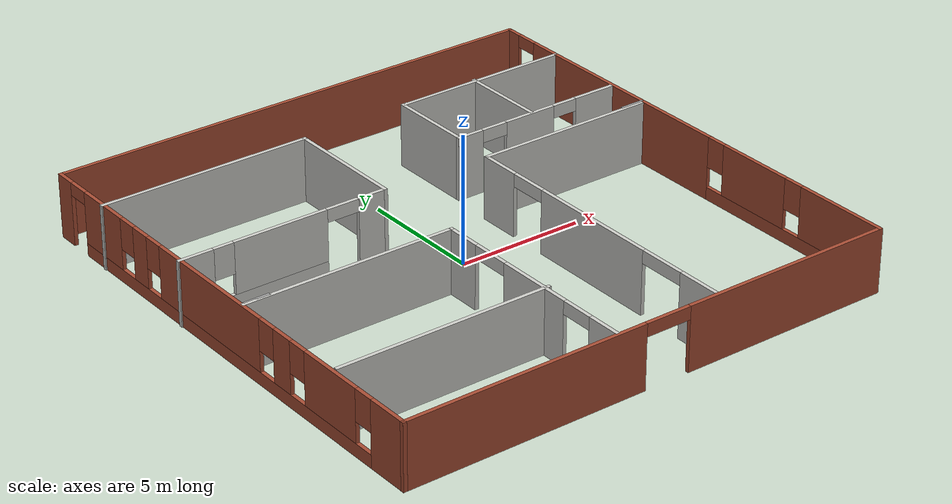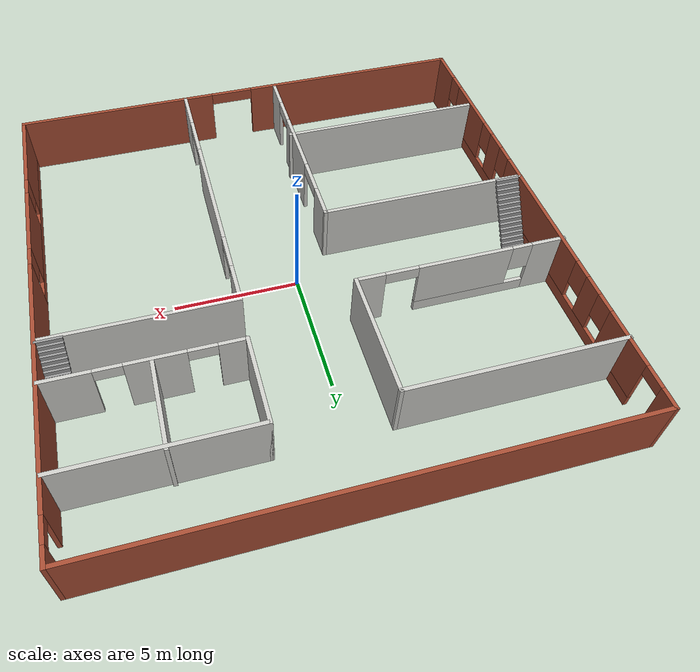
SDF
<?xml version='1.0'?>
<sdf version='1.7'>
  <model name='office'>
    <pose>-0.021351 0.012747 0 0 -0 0</pose>
    <link name='Stairs_0'>
      <visual name='Stairs_0_Visual_0'>
        <pose>-9.3001 0.402751 0.083333 0 -0 0</pose>
        <geometry>
          <box>
            <size>1 0.12 0.166667</size>
          </box>
        </geometry>
        <material>
          <script>
            <uri>file://media/materials/scripts/gazebo.material</uri>
            <name>Gazebo/Grey</name>
          </script>
          <ambient>1 1 1 1</ambient>
        </material>
        <meta>
          <layer>0</layer>
        </meta>
      </visual>
      <collision name='Stairs_0_Collision_0'>
        <geometry>
          <box>
            <size>1 0.12 0.166667</size>
          </box>
        </geometry>
        <pose>-9.3001 0.402751 0.083333 0 -0 0</pose>
      </collision>
      <visual name='Stairs_0_Visual_1'>
        <pose>-9.3001 0.282751 0.25 0 -0 0</pose>
        <geometry>
          <box>
            <size>1 0.12 0.166667</size>
          </box>
        </geometry>
        <material>
          <script>
            <uri>file://media/materials/scripts/gazebo.material</uri>
            <name>Gazebo/Grey</name>
          </script>
          <ambient>1 1 1 1</ambient>
        </material>
        <meta>
          <layer>0</layer>
        </meta>
      </visual>
      <collision name='Stairs_0_Collision_1'>
        <geometry>
          <box>
            <size>1 0.12 0.166667</size>
          </box>
        </geometry>
        <pose>-9.3001 0.282751 0.25 0 -0 0</pose>
      </collision>
      <visual name='Stairs_0_Visual_2'>
        <pose>-9.3001 0.162751 0.416667 0 -0 0</pose>
        <geometry>
          <box>
            <size>1 0.12 0.166667</size>
          </box>
        </geometry>
        <material>
          <script>
            <uri>file://media/materials/scripts/gazebo.material</uri>
            <name>Gazebo/Grey</name>
          </script>
          <ambient>1 1 1 1</ambient>
        </material>
        <meta>
          <layer>0</layer>
        </meta>
      </visual>
      <collision name='Stairs_0_Collision_2'>
        <geometry>
          <box>
            <size>1 0.12 0.166667</size>
          </box>
        </geometry>
        <pose>-9.3001 0.162751 0.416667 0 -0 0</pose>
      </collision>
      <visual name='Stairs_0_Visual_3'>
        <pose>-9.3001 0.042751 0.583333 0 -0 0</pose>
        <geometry>
          <box>
            <size>1 0.12 0.166667</size>
          </box>
        </geometry>
        <material>
          <script>
            <uri>file://media/materials/scripts/gazebo.material</uri>
            <name>Gazebo/Grey</name>
          </script>
          <ambient>1 1 1 1</ambient>
        </material>
        <meta>
          <layer>0</layer>
        </meta>
      </visual>
      <collision name='Stairs_0_Collision_3'>
        <geometry>
          <box>
            <size>1 0.12 0.166667</size>
          </box>
        </geometry>
        <pose>-9.3001 0.042751 0.583333 0 -0 0</pose>
      </collision>
      <visual name='Stairs_0_Visual_4'>
        <pose>-9.3001 -0.077249 0.75 0 -0 0</pose>
        <geometry>
          <box>
            <size>1 0.12 0.166667</size>
          </box>
        </geometry>
        <material>
          <script>
            <uri>file://media/materials/scripts/gazebo.material</uri>
            <name>Gazebo/Grey</name>
          </script>
          <ambient>1 1 1 1</ambient>
        </material>
        <meta>
          <layer>0</layer>
        </meta>
      </visual>
      <collision name='Stairs_0_Collision_4'>
        <geometry>
          <box>
            <size>1 0.12 0.166667</size>
          </box>
        </geometry>
        <pose>-9.3001 -0.077249 0.75 0 -0 0</pose>
      </collision>
      <visual name='Stairs_0_Visual_5'>
        <pose>-9.3001 -0.197249 0.916667 0 -0 0</pose>
        <geometry>
          <box>
            <size>1 0.12 0.166667</size>
          </box>
        </geometry>
        <material>
          <script>
            <uri>file://media/materials/scripts/gazebo.material</uri>
            <name>Gazebo/Grey</name>
          </script>
          <ambient>1 1 1 1</ambient>
        </material>
        <meta>
          <layer>0</layer>
        </meta>
      </visual>
      <collision name='Stairs_0_Collision_5'>
        <geometry>
          <box>
            <size>1 0.12 0.166667</size>
          </box>
        </geometry>
        <pose>-9.3001 -0.197249 0.916667 0 -0 0</pose>
      </collision>
      <visual name='Stairs_0_Visual_6'>
        <pose>-9.3001 -0.317249 1.08333 0 -0 0</pose>
        <geometry>
          <box>
            <size>1 0.12 0.166667</size>
          </box>
        </geometry>
        <material>
          <script>
            <uri>file://media/materials/scripts/gazebo.material</uri>
            <name>Gazebo/Grey</name>
          </script>
          <ambient>1 1 1 1</ambient>
        </material>
        <meta>
          <layer>0</layer>
        </meta>
      </visual>
      <collision name='Stairs_0_Collision_6'>
        <geometry>
          <box>
            <size>1 0.12 0.166667</size>
          </box>
        </geometry>
        <pose>-9.3001 -0.317249 1.08333 0 -0 0</pose>
      </collision>
      <visual name='Stairs_0_Visual_7'>
        <pose>-9.3001 -0.437249 1.25 0 -0 0</pose>
        <geometry>
          <box>
            <size>1 0.12 0.166667</size>
          </box>
        </geometry>
        <material>
          <script>
            <uri>file://media/materials/scripts/gazebo.material</uri>
            <name>Gazebo/Grey</name>
          </script>
          <ambient>1 1 1 1</ambient>
        </material>
        <meta>
          <layer>0</layer>
        </meta>
      </visual>
      <collision name='Stairs_0_Collision_7'>
        <geometry>
          <box>
            <size>1 0.12 0.166667</size>
          </box>
        </geometry>
        <pose>-9.3001 -0.437249 1.25 0 -0 0</pose>
      </collision>
      <visual name='Stairs_0_Visual_8'>
        <pose>-9.3001 -0.557249 1.41667 0 -0 0</pose>
        <geometry>
          <box>
            <size>1 0.12 0.166667</size>
          </box>
        </geometry>
        <material>
          <script>
            <uri>file://media/materials/scripts/gazebo.material</uri>
            <name>Gazebo/Grey</name>
          </script>
          <ambient>1 1 1 1</ambient>
        </material>
        <meta>
          <layer>0</layer>
        </meta>
      </visual>
      <collision name='Stairs_0_Collision_8'>
        <geometry>
          <box>
            <size>1 0.12 0.166667</size>
          </box>
        </geometry>
        <pose>-9.3001 -0.557249 1.41667 0 -0 0</pose>
      </collision>
      <visual name='Stairs_0_Visual_9'>
        <pose>-9.3001 -0.677249 1.58333 0 -0 0</pose>
        <geometry>
          <box>
            <size>1 0.12 0.166667</size>
          </box>
        </geometry>
        <material>
          <script>
            <uri>file://media/materials/scripts/gazebo.material</uri>
            <name>Gazebo/Grey</name>
          </script>
          <ambient>1 1 1 1</ambient>
        </material>
        <meta>
          <layer>0</layer>
        </meta>
      </visual>
      <collision name='Stairs_0_Collision_9'>
        <geometry>
          <box>
            <size>1 0.12 0.166667</size>
          </box>
        </geometry>
        <pose>-9.3001 -0.677249 1.58333 0 -0 0</pose>
      </collision>
      <visual name='Stairs_0_Visual_10'>
        <pose>-9.3001 -0.797249 1.75 0 -0 0</pose>
        <geometry>
          <box>
            <size>1 0.12 0.166667</size>
          </box>
        </geometry>
        <material>
          <script>
            <uri>file://media/materials/scripts/gazebo.material</uri>
            <name>Gazebo/Grey</name>
          </script>
          <ambient>1 1 1 1</ambient>
        </material>
        <meta>
          <layer>0</layer>
        </meta>
      </visual>
      <collision name='Stairs_0_Collision_10'>
        <geometry>
          <box>
            <size>1 0.12 0.166667</size>
          </box>
        </geometry>
        <pose>-9.3001 -0.797249 1.75 0 -0 0</pose>
      </collision>
      <visual name='Stairs_0_Visual_11'>
        <pose>-9.3001 -0.917249 1.91667 0 -0 0</pose>
        <geometry>
          <box>
            <size>1 0.12 0.166667</size>
          </box>
        </geometry>
        <material>
          <script>
            <uri>file://media/materials/scripts/gazebo.material</uri>
            <name>Gazebo/Grey</name>
          </script>
          <ambient>1 1 1 1</ambient>
        </material>
        <meta>
          <layer>0</layer>
        </meta>
      </visual>
      <collision name='Stairs_0_Collision_11'>
        <geometry>
          <box>
            <size>1 0.12 0.166667</size>
          </box>
        </geometry>
        <pose>-9.3001 -0.917249 1.91667 0 -0 0</pose>
      </collision>
      <visual name='Stairs_0_Visual_12'>
        <pose>-9.3001 -1.03725 2.08333 0 -0 0</pose>
        <geometry>
          <box>
            <size>1 0.12 0.166667</size>
          </box>
        </geometry>
        <material>
          <script>
            <uri>file://media/materials/scripts/gazebo.material</uri>
            <name>Gazebo/Grey</name>
          </script>
          <ambient>1 1 1 1</ambient>
        </material>
        <meta>
          <layer>0</layer>
        </meta>
      </visual>
      <collision name='Stairs_0_Collision_12'>
        <geometry>
          <box>
            <size>1 0.12 0.166667</size>
          </box>
        </geometry>
        <pose>-9.3001 -1.03725 2.08333 0 -0 0</pose>
      </collision>
      <visual name='Stairs_0_Visual_13'>
        <pose>-9.3001 -1.15725 2.25 0 -0 0</pose>
        <geometry>
          <box>
            <size>1 0.12 0.166667</size>
          </box>
        </geometry>
        <material>
          <script>
            <uri>file://media/materials/scripts/gazebo.material</uri>
            <name>Gazebo/Grey</name>
          </script>
          <ambient>1 1 1 1</ambient>
        </material>
        <meta>
          <layer>0</layer>
        </meta>
      </visual>
      <collision name='Stairs_0_Collision_13'>
        <geometry>
          <box>
            <size>1 0.12 0.166667</size>
          </box>
        </geometry>
        <pose>-9.3001 -1.15725 2.25 0 -0 0</pose>
      </collision>
      <visual name='Stairs_0_Visual_14'>
        <pose>-9.3001 -1.27725 2.41667 0 -0 0</pose>
        <geometry>
          <box>
            <size>1 0.12 0.166667</size>
          </box>
        </geometry>
        <material>
          <script>
            <uri>file://media/materials/scripts/gazebo.material</uri>
            <name>Gazebo/Grey</name>
          </script>
          <ambient>1 1 1 1</ambient>
        </material>
        <meta>
          <layer>0</layer>
        </meta>
      </visual>
      <collision name='Stairs_0_Collision_14'>
        <geometry>
          <box>
            <size>1 0.12 0.166667</size>
          </box>
        </geometry>
        <pose>-9.3001 -1.27725 2.41667 0 -0 0</pose>
      </collision>
    </link>
    <link name='Stairs_1'>
      <visual name='Stairs_1_Visual_0'>
        <pose>9.46038 3.60481 0.083333 0 -0 0</pose>
        <geometry>
          <box>
            <size>1 0.1 0.166667</size>
          </box>
        </geometry>
        <material>
          <script>
            <uri>file://media/materials/scripts/gazebo.material</uri>
            <name>Gazebo/Grey</name>
          </script>
          <ambient>1 1 1 1</ambient>
        </material>
        <meta>
          <layer>0</layer>
        </meta>
      </visual>
      <collision name='Stairs_1_Collision_0'>
        <geometry>
          <box>
            <size>1 0.1 0.166667</size>
          </box>
        </geometry>
        <pose>9.46038 3.60481 0.083333 0 -0 0</pose>
      </collision>
      <visual name='Stairs_1_Visual_1'>
        <pose>9.46038 3.50481 0.25 0 -0 0</pose>
        <geometry>
          <box>
            <size>1 0.1 0.166667</size>
          </box>
        </geometry>
        <material>
          <script>
            <uri>file://media/materials/scripts/gazebo.material</uri>
            <name>Gazebo/Grey</name>
          </script>
          <ambient>1 1 1 1</ambient>
        </material>
        <meta>
          <layer>0</layer>
        </meta>
      </visual>
      <collision name='Stairs_1_Collision_1'>
        <geometry>
          <box>
            <size>1 0.1 0.166667</size>
          </box>
        </geometry>
        <pose>9.46038 3.50481 0.25 0 -0 0</pose>
      </collision>
      <visual name='Stairs_1_Visual_2'>
        <pose>9.46038 3.40481 0.416667 0 -0 0</pose>
        <geometry>
          <box>
            <size>1 0.1 0.166667</size>
          </box>
        </geometry>
        <material>
          <script>
            <uri>file://media/materials/scripts/gazebo.material</uri>
            <name>Gazebo/Grey</name>
          </script>
          <ambient>1 1 1 1</ambient>
        </material>
        <meta>
          <layer>0</layer>
        </meta>
      </visual>
      <collision name='Stairs_1_Collision_2'>
        <geometry>
          <box>
            <size>1 0.1 0.166667</size>
          </box>
        </geometry>
        <pose>9.46038 3.40481 0.416667 0 -0 0</pose>
      </collision>
      <visual name='Stairs_1_Visual_3'>
        <pose>9.46038 3.30481 0.583333 0 -0 0</pose>
        <geometry>
          <box>
            <size>1 0.1 0.166667</size>
          </box>
        </geometry>
        <material>
          <script>
            <uri>file://media/materials/scripts/gazebo.material</uri>
            <name>Gazebo/Grey</name>
          </script>
          <ambient>1 1 1 1</ambient>
        </material>
        <meta>
          <layer>0</layer>
        </meta>
      </visual>
      <collision name='Stairs_1_Collision_3'>
        <geometry>
          <box>
            <size>1 0.1 0.166667</size>
          </box>
        </geometry>
        <pose>9.46038 3.30481 0.583333 0 -0 0</pose>
      </collision>
      <visual name='Stairs_1_Visual_4'>
        <pose>9.46038 3.20481 0.75 0 -0 0</pose>
        <geometry>
          <box>
            <size>1 0.1 0.166667</size>
          </box>
        </geometry>
        <material>
          <script>
            <uri>file://media/materials/scripts/gazebo.material</uri>
            <name>Gazebo/Grey</name>
          </script>
          <ambient>1 1 1 1</ambient>
        </material>
        <meta>
          <layer>0</layer>
        </meta>
      </visual>
      <collision name='Stairs_1_Collision_4'>
        <geometry>
          <box>
            <size>1 0.1 0.166667</size>
          </box>
        </geometry>
        <pose>9.46038 3.20481 0.75 0 -0 0</pose>
      </collision>
      <visual name='Stairs_1_Visual_5'>
        <pose>9.46038 3.10481 0.916667 0 -0 0</pose>
        <geometry>
          <box>
            <size>1 0.1 0.166667</size>
          </box>
        </geometry>
        <material>
          <script>
            <uri>file://media/materials/scripts/gazebo.material</uri>
            <name>Gazebo/Grey</name>
          </script>
          <ambient>1 1 1 1</ambient>
        </material>
        <meta>
          <layer>0</layer>
        </meta>
      </visual>
      <collision name='Stairs_1_Collision_5'>
        <geometry>
          <box>
            <size>1 0.1 0.166667</size>
          </box>
        </geometry>
        <pose>9.46038 3.10481 0.916667 0 -0 0</pose>
      </collision>
      <visual name='Stairs_1_Visual_6'>
        <pose>9.46038 3.00481 1.08333 0 -0 0</pose>
        <geometry>
          <box>
            <size>1 0.1 0.166667</size>
          </box>
        </geometry>
        <material>
          <script>
            <uri>file://media/materials/scripts/gazebo.material</uri>
            <name>Gazebo/Grey</name>
          </script>
          <ambient>1 1 1 1</ambient>
        </material>
        <meta>
          <layer>0</layer>
        </meta>
      </visual>
      <collision name='Stairs_1_Collision_6'>
        <geometry>
          <box>
            <size>1 0.1 0.166667</size>
          </box>
        </geometry>
        <pose>9.46038 3.00481 1.08333 0 -0 0</pose>
      </collision>
      <visual name='Stairs_1_Visual_7'>
        <pose>9.46038 2.90481 1.25 0 -0 0</pose>
        <geometry>
          <box>
            <size>1 0.1 0.166667</size>
          </box>
        </geometry>
        <material>
          <script>
            <uri>file://media/materials/scripts/gazebo.material</uri>
            <name>Gazebo/Grey</name>
          </script>
          <ambient>1 1 1 1</ambient>
        </material>
        <meta>
          <layer>0</layer>
        </meta>
      </visual>
      <collision name='Stairs_1_Collision_7'>
        <geometry>
          <box>
            <size>1 0.1 0.166667</size>
          </box>
        </geometry>
        <pose>9.46038 2.90481 1.25 0 -0 0</pose>
      </collision>
      <visual name='Stairs_1_Visual_8'>
        <pose>9.46038 2.80481 1.41667 0 -0 0</pose>
        <geometry>
          <box>
            <size>1 0.1 0.166667</size>
          </box>
        </geometry>
        <material>
          <script>
            <uri>file://media/materials/scripts/gazebo.material</uri>
            <name>Gazebo/Grey</name>
          </script>
          <ambient>1 1 1 1</ambient>
        </material>
        <meta>
          <layer>0</layer>
        </meta>
      </visual>
      <collision name='Stairs_1_Collision_8'>
        <geometry>
          <box>
            <size>1 0.1 0.166667</size>
          </box>
        </geometry>
        <pose>9.46038 2.80481 1.41667 0 -0 0</pose>
      </collision>
      <visual name='Stairs_1_Visual_9'>
        <pose>9.46038 2.70481 1.58333 0 -0 0</pose>
        <geometry>
          <box>
            <size>1 0.1 0.166667</size>
          </box>
        </geometry>
        <material>
          <script>
            <uri>file://media/materials/scripts/gazebo.material</uri>
            <name>Gazebo/Grey</name>
          </script>
          <ambient>1 1 1 1</ambient>
        </material>
        <meta>
          <layer>0</layer>
        </meta>
      </visual>
      <collision name='Stairs_1_Collision_9'>
        <geometry>
          <box>
            <size>1 0.1 0.166667</size>
          </box>
        </geometry>
        <pose>9.46038 2.70481 1.58333 0 -0 0</pose>
      </collision>
      <visual name='Stairs_1_Visual_10'>
        <pose>9.46038 2.60481 1.75 0 -0 0</pose>
        <geometry>
          <box>
            <size>1 0.1 0.166667</size>
          </box>
        </geometry>
        <material>
          <script>
            <uri>file://media/materials/scripts/gazebo.material</uri>
            <name>Gazebo/Grey</name>
          </script>
          <ambient>1 1 1 1</ambient>
        </material>
        <meta>
          <layer>0</layer>
        </meta>
      </visual>
      <collision name='Stairs_1_Collision_10'>
        <geometry>
          <box>
            <size>1 0.1 0.166667</size>
          </box>
        </geometry>
        <pose>9.46038 2.60481 1.75 0 -0 0</pose>
      </collision>
      <visual name='Stairs_1_Visual_11'>
        <pose>9.46038 2.50481 1.91667 0 -0 0</pose>
        <geometry>
          <box>
            <size>1 0.1 0.166667</size>
          </box>
        </geometry>
        <material>
          <script>
            <uri>file://media/materials/scripts/gazebo.material</uri>
            <name>Gazebo/Grey</name>
          </script>
          <ambient>1 1 1 1</ambient>
        </material>
        <meta>
          <layer>0</layer>
        </meta>
      </visual>
      <collision name='Stairs_1_Collision_11'>
        <geometry>
          <box>
            <size>1 0.1 0.166667</size>
          </box>
        </geometry>
        <pose>9.46038 2.50481 1.91667 0 -0 0</pose>
      </collision>
      <visual name='Stairs_1_Visual_12'>
        <pose>9.46038 2.40481 2.08333 0 -0 0</pose>
        <geometry>
          <box>
            <size>1 0.1 0.166667</size>
          </box>
        </geometry>
        <material>
          <script>
            <uri>file://media/materials/scripts/gazebo.material</uri>
            <name>Gazebo/Grey</name>
          </script>
          <ambient>1 1 1 1</ambient>
        </material>
        <meta>
          <layer>0</layer>
        </meta>
      </visual>
      <collision name='Stairs_1_Collision_12'>
        <geometry>
          <box>
            <size>1 0.1 0.166667</size>
          </box>
        </geometry>
        <pose>9.46038 2.40481 2.08333 0 -0 0</pose>
      </collision>
      <visual name='Stairs_1_Visual_13'>
        <pose>9.46038 2.30481 2.25 0 -0 0</pose>
        <geometry>
          <box>
            <size>1 0.1 0.166667</size>
          </box>
        </geometry>
        <material>
          <script>
            <uri>file://media/materials/scripts/gazebo.material</uri>
            <name>Gazebo/Grey</name>
          </script>
          <ambient>1 1 1 1</ambient>
        </material>
        <meta>
          <layer>0</layer>
        </meta>
      </visual>
      <collision name='Stairs_1_Collision_13'>
        <geometry>
          <box>
            <size>1 0.1 0.166667</size>
          </box>
        </geometry>
        <pose>9.46038 2.30481 2.25 0 -0 0</pose>
      </collision>
      <visual name='Stairs_1_Visual_14'>
        <pose>9.46038 2.20481 2.41667 0 -0 0</pose>
        <geometry>
          <box>
            <size>1 0.1 0.166667</size>
          </box>
        </geometry>
        <material>
          <script>
            <uri>file://media/materials/scripts/gazebo.material</uri>
            <name>Gazebo/Grey</name>
          </script>
          <ambient>1 1 1 1</ambient>
        </material>
        <meta>
          <layer>0</layer>
        </meta>
      </visual>
      <collision name='Stairs_1_Collision_14'>
        <geometry>
          <box>
            <size>1 0.1 0.166667</size>
          </box>
        </geometry>
        <pose>9.46038 2.20481 2.41667 0 -0 0</pose>
      </collision>
    </link>
    <link name='Wall_18'>
      <pose>9.94803 0 0 0 -0 -1.5708</pose>
      <visual name='Wall_18_Visual_0'>
        <pose>-9.76088 0 1.25 0 -0 0</pose>
        <geometry>
          <box>
            <size>0.72825 0.15 2.5</size>
          </box>
        </geometry>
        <material>
          <script>
            <uri>file://media/materials/scripts/gazebo.material</uri>
            <name>Gazebo/Bricks</name>
          </script>
          <ambient>1 1 1 1</ambient>
        </material>
        <meta>
          <layer>0</layer>
        </meta>
      </visual>
      <collision name='Wall_18_Collision_0'>
        <geometry>
          <box>
            <size>0.72825 0.15 2.5</size>
          </box>
        </geometry>
        <pose>-9.76088 0 1.25 0 -0 0</pose>
      </collision>
      <visual name='Wall_18_Visual_1'>
        <pose>-3.49812 0 1.25 0 -0 0</pose>
        <geometry>
          <box>
            <size>9.99725 0.15 2.5</size>
          </box>
        </geometry>
        <material>
          <script>
            <uri>file://media/materials/scripts/gazebo.material</uri>
            <name>Gazebo/Bricks</name>
          </script>
          <ambient>1 1 1 1</ambient>
        </material>
        <meta>
          <layer>0</layer>
        </meta>
      </visual>
      <collision name='Wall_18_Collision_1'>
        <geometry>
          <box>
            <size>9.99725 0.15 2.5</size>
          </box>
        </geometry>
        <pose>-3.49812 0 1.25 0 -0 0</pose>
      </collision>
      <visual name='Wall_18_Visual_2'>
        <pose>1.5005 0 1.25 0 -0 0</pose>
        <geometry>
          <box>
            <size>0 0.15 2.5</size>
          </box>
        </geometry>
        <material>
          <script>
            <uri>file://media/materials/scripts/gazebo.material</uri>
            <name>Gazebo/Bricks</name>
          </script>
          <ambient>1 1 1 1</ambient>
        </material>
        <meta>
          <layer>0</layer>
        </meta>
      </visual>
      <collision name='Wall_18_Collision_2'>
        <geometry>
          <box>
            <size>0 0.15 2.5</size>
          </box>
        </geometry>
        <pose>1.5005 0 1.25 0 -0 0</pose>
      </collision>
      <visual name='Wall_18_Visual_3'>
        <pose>5.81275 0 0.25 0 -0 0</pose>
        <geometry>
          <box>
            <size>8.6245 0.15 0.5</size>
          </box>
        </geometry>
        <material>
          <script>
            <uri>file://media/materials/scripts/gazebo.material</uri>
            <name>Gazebo/Bricks</name>
          </script>
          <ambient>1 1 1 1</ambient>
        </material>
        <meta>
          <layer>0</layer>
        </meta>
      </visual>
      <collision name='Wall_18_Collision_3'>
        <geometry>
          <box>
            <size>8.6245 0.15 0.5</size>
          </box>
        </geometry>
        <pose>5.81275 0 0.25 0 -0 0</pose>
      </collision>
      <visual name='Wall_18_Visual_4'>
        <pose>3.88799 0 1.5 0 -0 0</pose>
        <geometry>
          <box>
            <size>3.17496 0.15 2</size>
          </box>
        </geometry>
        <material>
          <script>
            <uri>file://media/materials/scripts/gazebo.material</uri>
            <name>Gazebo/Bricks</name>
          </script>
          <ambient>1 1 1 1</ambient>
        </material>
        <meta>
          <layer>0</layer>
        </meta>
      </visual>
      <collision name='Wall_18_Collision_4'>
        <geometry>
          <box>
            <size>3.17496 0.15 2</size>
          </box>
        </geometry>
        <pose>3.88799 0 1.5 0 -0 0</pose>
      </collision>
      <visual name='Wall_18_Visual_5'>
        <pose>8.20023 0 1.5 0 -0 0</pose>
        <geometry>
          <box>
            <size>3.84953 0.15 2</size>
          </box>
        </geometry>
        <material>
          <script>
            <uri>file://media/materials/scripts/gazebo.material</uri>
            <name>Gazebo/Bricks</name>
          </script>
          <ambient>1 1 1 1</ambient>
        </material>
        <meta>
          <layer>0</layer>
        </meta>
      </visual>
      <collision name='Wall_18_Collision_5'>
        <geometry>
          <box>
            <size>3.84953 0.15 2</size>
          </box>
        </geometry>
        <pose>8.20023 0 1.5 0 -0 0</pose>
      </collision>
      <visual name='Wall_18_Visual_6'>
        <pose>1.5005 0 1.9 0 -0 0</pose>
        <geometry>
          <box>
            <size>0 0.15 1.2</size>
          </box>
        </geometry>
        <material>
          <script>
            <uri>file://media/materials/scripts/gazebo.material</uri>
            <name>Gazebo/Bricks</name>
          </script>
          <ambient>1 1 1 1</ambient>
        </material>
        <meta>
          <layer>0</layer>
        </meta>
      </visual>
      <collision name='Wall_18_Collision_6'>
        <geometry>
          <box>
            <size>0 0.15 1.2</size>
          </box>
        </geometry>
        <pose>1.5005 0 1.9 0 -0 0</pose>
      </collision>
      <visual name='Wall_18_Visual_7'>
        <pose>1.9005 0 1.9 0 -0 0</pose>
        <geometry>
          <box>
            <size>0.8 0.15 1.2</size>
          </box>
        </geometry>
        <material>
          <script>
            <uri>file://media/materials/scripts/gazebo.material</uri>
            <name>Gazebo/Bricks</name>
          </script>
          <ambient>1 1 1 1</ambient>
        </material>
        <meta>
          <layer>0</layer>
        </meta>
      </visual>
      <collision name='Wall_18_Collision_7'>
        <geometry>
          <box>
            <size>0.8 0.15 1.2</size>
          </box>
        </geometry>
        <pose>1.9005 0 1.9 0 -0 0</pose>
      </collision>
      <visual name='Wall_18_Visual_8'>
        <pose>5.87547 0 1.9 0 -0 0</pose>
        <geometry>
          <box>
            <size>0.8 0.15 1.2</size>
          </box>
        </geometry>
        <material>
          <script>
            <uri>file://media/materials/scripts/gazebo.material</uri>
            <name>Gazebo/Bricks</name>
          </script>
          <ambient>1 1 1 1</ambient>
        </material>
        <meta>
          <layer>0</layer>
        </meta>
      </visual>
      <collision name='Wall_18_Collision_8'>
        <geometry>
          <box>
            <size>0.8 0.15 1.2</size>
          </box>
        </geometry>
        <pose>5.87547 0 1.9 0 -0 0</pose>
      </collision>
      <visual name='Wall_18_Visual_9'>
        <pose>-8.94675 0 2.25 0 -0 0</pose>
        <geometry>
          <box>
            <size>0.9 0.15 0.5</size>
          </box>
        </geometry>
        <material>
          <script>
            <uri>file://media/materials/scripts/gazebo.material</uri>
            <name>Gazebo/Bricks</name>
          </script>
          <ambient>1 1 1 1</ambient>
        </material>
        <meta>
          <layer>0</layer>
        </meta>
      </visual>
      <collision name='Wall_18_Collision_9'>
        <geometry>
          <box>
            <size>0.9 0.15 0.5</size>
          </box>
        </geometry>
        <pose>-8.94675 0 2.25 0 -0 0</pose>
      </collision>
    </link>
    <link name='Wall_19'>
      <pose>0.023031 -10.05 0 0 -0 3.14159</pose>
      <visual name='Wall_19_Visual_0'>
        <pose>-5.71681 0 1.25 0 -0 0</pose>
        <geometry>
          <box>
            <size>8.56637 0.15 2.5</size>
          </box>
        </geometry>
        <material>
          <script>
            <uri>file://media/materials/scripts/gazebo.material</uri>
            <name>Gazebo/Bricks</name>
          </script>
          <ambient>1 1 1 1</ambient>
        </material>
        <meta>
          <layer>0</layer>
        </meta>
      </visual>
      <collision name='Wall_19_Collision_0'>
        <geometry>
          <box>
            <size>8.56637 0.15 2.5</size>
          </box>
        </geometry>
        <pose>-5.71681 0 1.25 0 -0 0</pose>
      </collision>
      <visual name='Wall_19_Visual_1'>
        <pose>5.19572 0 1.25 0 -0 0</pose>
        <geometry>
          <box>
            <size>9.60856 0.15 2.5</size>
          </box>
        </geometry>
        <material>
          <script>
            <uri>file://media/materials/scripts/gazebo.material</uri>
            <name>Gazebo/Bricks</name>
          </script>
          <ambient>1 1 1 1</ambient>
        </material>
        <meta>
          <layer>0</layer>
        </meta>
      </visual>
      <collision name='Wall_19_Collision_1'>
        <geometry>
          <box>
            <size>9.60856 0.15 2.5</size>
          </box>
        </geometry>
        <pose>5.19572 0 1.25 0 -0 0</pose>
      </collision>
      <visual name='Wall_19_Visual_2'>
        <pose>-0.521096 0 2.25 0 -0 0</pose>
        <geometry>
          <box>
            <size>1.82506 0.15 0.5</size>
          </box>
        </geometry>
        <material>
          <script>
            <uri>file://media/materials/scripts/gazebo.material</uri>
            <name>Gazebo/Bricks</name>
          </script>
          <ambient>1 1 1 1</ambient>
        </material>
        <meta>
          <layer>0</layer>
        </meta>
      </visual>
      <collision name='Wall_19_Collision_2'>
        <geometry>
          <box>
            <size>1.82506 0.15 0.5</size>
          </box>
        </geometry>
        <pose>-0.521096 0 2.25 0 -0 0</pose>
      </collision>
    </link>
    <link name='Wall_30'>
      <pose>-1.49607 -5.64063 0 0 -0 1.5708</pose>
      <visual name='Wall_30_Visual_0'>
        <pose>-3.70229 0 1.25 0 -0 0</pose>
        <geometry>
          <box>
            <size>1.34543 0.15 2.5</size>
          </box>
        </geometry>
        <material>
          <script>
            <uri>file://media/materials/scripts/gazebo.material</uri>
            <name>Gazebo/CeilingTiled</name>
          </script>
          <ambient>1 1 1 1</ambient>
        </material>
        <meta>
          <layer>0</layer>
        </meta>
      </visual>
      <collision name='Wall_30_Collision_0'>
        <geometry>
          <box>
            <size>1.34543 0.15 2.5</size>
          </box>
        </geometry>
        <pose>-3.70229 0 1.25 0 -0 0</pose>
      </collision>
      <visual name='Wall_30_Visual_1'>
        <pose>-0.192901 0 1.25 0 -0 0</pose>
        <geometry>
          <box>
            <size>3.10009 0.15 2.5</size>
          </box>
        </geometry>
        <material>
          <script>
            <uri>file://media/materials/scripts/gazebo.material</uri>
            <name>Gazebo/CeilingTiled</name>
          </script>
          <ambient>1 1 1 1</ambient>
        </material>
        <meta>
          <layer>0</layer>
        </meta>
      </visual>
      <collision name='Wall_30_Collision_1'>
        <geometry>
          <box>
            <size>3.10009 0.15 2.5</size>
          </box>
        </geometry>
        <pose>-0.192901 0 1.25 0 -0 0</pose>
      </collision>
      <visual name='Wall_30_Visual_2'>
        <pose>3.63972 0 1.25 0 -0 0</pose>
        <geometry>
          <box>
            <size>1.47057 0.15 2.5</size>
          </box>
        </geometry>
        <material>
          <script>
            <uri>file://media/materials/scripts/gazebo.material</uri>
            <name>Gazebo/CeilingTiled</name>
          </script>
          <ambient>1 1 1 1</ambient>
        </material>
        <meta>
          <layer>0</layer>
        </meta>
      </visual>
      <collision name='Wall_30_Collision_2'>
        <geometry>
          <box>
            <size>1.47057 0.15 2.5</size>
          </box>
        </geometry>
        <pose>3.63972 0 1.25 0 -0 0</pose>
      </collision>
      <visual name='Wall_30_Visual_3'>
        <pose>-2.38626 0 2.25 0 -0 0</pose>
        <geometry>
          <box>
            <size>1.28663 0.15 0.5</size>
          </box>
        </geometry>
        <material>
          <script>
            <uri>file://media/materials/scripts/gazebo.material</uri>
            <name>Gazebo/CeilingTiled</name>
          </script>
          <ambient>1 1 1 1</ambient>
        </material>
        <meta>
          <layer>0</layer>
        </meta>
      </visual>
      <collision name='Wall_30_Collision_3'>
        <geometry>
          <box>
            <size>1.28663 0.15 0.5</size>
          </box>
        </geometry>
        <pose>-2.38626 0 2.25 0 -0 0</pose>
      </collision>
      <visual name='Wall_30_Visual_4'>
        <pose>2.13079 0 2.25 0 -0 0</pose>
        <geometry>
          <box>
            <size>1.54729 0.15 0.5</size>
          </box>
        </geometry>
        <material>
          <script>
            <uri>file://media/materials/scripts/gazebo.material</uri>
            <name>Gazebo/CeilingTiled</name>
          </script>
          <ambient>1 1 1 1</ambient>
        </material>
        <meta>
          <layer>0</layer>
        </meta>
      </visual>
      <collision name='Wall_30_Collision_4'>
        <geometry>
          <box>
            <size>1.54729 0.15 0.5</size>
          </box>
        </geometry>
        <pose>2.13079 0 2.25 0 -0 0</pose>
      </collision>
    </link>
    <link name='Wall_31'>
      <collision name='Wall_31_Collision'>
        <geometry>
          <box>
            <size>8.5 0.15 2.5</size>
          </box>
        </geometry>
        <pose>0 0 1.25 0 -0 0</pose>
      </collision>
      <visual name='Wall_31_Visual'>
        <pose>0 0 1.25 0 -0 0</pose>
        <geometry>
          <box>
            <size>8.5 0.15 2.5</size>
          </box>
        </geometry>
        <material>
          <script>
            <uri>file://media/materials/scripts/gazebo.material</uri>
            <name>Gazebo/CeilingTiled</name>
          </script>
          <ambient>1 1 1 1</ambient>
        </material>
        <meta>
          <layer>0</layer>
        </meta>
      </visual>
      <pose>-5.67107 -1.34063 0 0 -0 3.14159</pose>
    </link>
    <link name='Wall_33'>
      <pose>2.69108 -3.93716 0 0 -0 1.5708</pose>
      <visual name='Wall_33_Visual_0'>
        <pose>-5.22435 0 1.25 0 -0 0</pose>
        <geometry>
          <box>
            <size>1.8013 0.15 2.5</size>
          </box>
        </geometry>
        <material>
          <script>
            <uri>file://media/materials/scripts/gazebo.material</uri>
            <name>Gazebo/CeilingTiled</name>
          </script>
          <ambient>1 1 1 1</ambient>
        </material>
        <meta>
          <layer>0</layer>
        </meta>
      </visual>
      <collision name='Wall_33_Collision_0'>
        <geometry>
          <box>
            <size>1.8013 0.15 2.5</size>
          </box>
        </geometry>
        <pose>-5.22435 0 1.25 0 -0 0</pose>
      </collision>
      <visual name='Wall_33_Visual_1'>
        <pose>0.233812 0 1.25 0 -0 0</pose>
        <geometry>
          <box>
            <size>5.35815 0.15 2.5</size>
          </box>
        </geometry>
        <material>
          <script>
            <uri>file://media/materials/scripts/gazebo.material</uri>
            <name>Gazebo/CeilingTiled</name>
          </script>
          <ambient>1 1 1 1</ambient>
        </material>
        <meta>
          <layer>0</layer>
        </meta>
      </visual>
      <collision name='Wall_33_Collision_1'>
        <geometry>
          <box>
            <size>5.35815 0.15 2.5</size>
          </box>
        </geometry>
        <pose>0.233812 0 1.25 0 -0 0</pose>
      </collision>
      <visual name='Wall_33_Visual_2'>
        <pose>5.28026 0 1.25 0 -0 0</pose>
        <geometry>
          <box>
            <size>1.68947 0.15 2.5</size>
          </box>
        </geometry>
        <material>
          <script>
            <uri>file://media/materials/scripts/gazebo.material</uri>
            <name>Gazebo/CeilingTiled</name>
          </script>
          <ambient>1 1 1 1</ambient>
        </material>
        <meta>
          <layer>0</layer>
        </meta>
      </visual>
      <collision name='Wall_33_Collision_2'>
        <geometry>
          <box>
            <size>1.68947 0.15 2.5</size>
          </box>
        </geometry>
        <pose>5.28026 0 1.25 0 -0 0</pose>
      </collision>
      <visual name='Wall_33_Visual_3'>
        <pose>-3.38448 0 2.25 0 -0 0</pose>
        <geometry>
          <box>
            <size>1.87843 0.15 0.5</size>
          </box>
        </geometry>
        <material>
          <script>
            <uri>file://media/materials/scripts/gazebo.material</uri>
            <name>Gazebo/CeilingTiled</name>
          </script>
          <ambient>1 1 1 1</ambient>
        </material>
        <meta>
          <layer>0</layer>
        </meta>
      </visual>
      <collision name='Wall_33_Collision_3'>
        <geometry>
          <box>
            <size>1.87843 0.15 0.5</size>
          </box>
        </geometry>
        <pose>-3.38448 0 2.25 0 -0 0</pose>
      </collision>
      <visual name='Wall_33_Visual_4'>
        <pose>3.67421 0 2.25 0 -0 0</pose>
        <geometry>
          <box>
            <size>1.52264 0.15 0.5</size>
          </box>
        </geometry>
        <material>
          <script>
            <uri>file://media/materials/scripts/gazebo.material</uri>
            <name>Gazebo/CeilingTiled</name>
          </script>
          <ambient>1 1 1 1</ambient>
        </material>
        <meta>
          <layer>0</layer>
        </meta>
      </visual>
      <collision name='Wall_33_Collision_4'>
        <geometry>
          <box>
            <size>1.52264 0.15 0.5</size>
          </box>
        </geometry>
        <pose>3.67421 0 2.25 0 -0 0</pose>
      </collision>
    </link>
    <link name='Wall_34'>
      <collision name='Wall_34_Collision'>
        <geometry>
          <box>
            <size>7.25 0.15 2.5</size>
          </box>
        </geometry>
        <pose>0 0 1.25 0 -0 0</pose>
      </collision>
      <visual name='Wall_34_Visual'>
        <pose>0 0 1.25 0 -0 0</pose>
        <geometry>
          <box>
            <size>7.25 0.15 2.5</size>
          </box>
        </geometry>
        <material>
          <script>
            <uri>file://media/materials/scripts/gazebo.material</uri>
            <name>Gazebo/CeilingTiled</name>
          </script>
          <ambient>1 1 1 1</ambient>
        </material>
        <meta>
          <layer>0</layer>
        </meta>
      </visual>
      <pose>6.24108 2.11284 0 0 -0 0</pose>
    </link>
    <link name='Wall_36'>
      <pose>6.35229 3.87697 0 0 -0 3.14159</pose>
      <visual name='Wall_36_Visual_0'>
        <pose>-2.69561 0 1.25 0 -0 0</pose>
        <geometry>
          <box>
            <size>1.85878 0.15 2.5</size>
          </box>
        </geometry>
        <material>
          <script>
            <uri>file://media/materials/scripts/gazebo.material</uri>
            <name>Gazebo/CeilingTiled</name>
          </script>
          <ambient>1 1 1 1</ambient>
        </material>
        <meta>
          <layer>0</layer>
        </meta>
      </visual>
      <collision name='Wall_36_Collision_0'>
        <geometry>
          <box>
            <size>1.85878 0.15 2.5</size>
          </box>
        </geometry>
        <pose>-2.69561 0 1.25 0 -0 0</pose>
      </collision>
      <visual name='Wall_36_Visual_1'>
        <pose>0.356069 0 1.25 0 -0 0</pose>
        <geometry>
          <box>
            <size>2.18723 0.15 2.5</size>
          </box>
        </geometry>
        <material>
          <script>
            <uri>file://media/materials/scripts/gazebo.material</uri>
            <name>Gazebo/CeilingTiled</name>
          </script>
          <ambient>1 1 1 1</ambient>
        </material>
        <meta>
          <layer>0</layer>
        </meta>
      </visual>
      <collision name='Wall_36_Collision_1'>
        <geometry>
          <box>
            <size>2.18723 0.15 2.5</size>
          </box>
        </geometry>
        <pose>0.356069 0 1.25 0 -0 0</pose>
      </collision>
      <visual name='Wall_36_Visual_2'>
        <pose>3.06922 0 1.25 0 -0 0</pose>
        <geometry>
          <box>
            <size>1.11156 0.15 2.5</size>
          </box>
        </geometry>
        <material>
          <script>
            <uri>file://media/materials/scripts/gazebo.material</uri>
            <name>Gazebo/CeilingTiled</name>
          </script>
          <ambient>1 1 1 1</ambient>
        </material>
        <meta>
          <layer>0</layer>
        </meta>
      </visual>
      <collision name='Wall_36_Collision_2'>
        <geometry>
          <box>
            <size>1.11156 0.15 2.5</size>
          </box>
        </geometry>
        <pose>3.06922 0 1.25 0 -0 0</pose>
      </collision>
      <visual name='Wall_36_Visual_3'>
        <pose>-1.25188 0 2.25 0 -0 0</pose>
        <geometry>
          <box>
            <size>1.02867 0.15 0.5</size>
          </box>
        </geometry>
        <material>
          <script>
            <uri>file://media/materials/scripts/gazebo.material</uri>
            <name>Gazebo/CeilingTiled</name>
          </script>
          <ambient>1 1 1 1</ambient>
        </material>
        <meta>
          <layer>0</layer>
        </meta>
      </visual>
      <collision name='Wall_36_Collision_3'>
        <geometry>
          <box>
            <size>1.02867 0.15 0.5</size>
          </box>
        </geometry>
        <pose>-1.25188 0 2.25 0 -0 0</pose>
      </collision>
      <visual name='Wall_36_Visual_4'>
        <pose>1.98157 0 2.25 0 -0 0</pose>
        <geometry>
          <box>
            <size>1.06376 0.15 0.5</size>
          </box>
        </geometry>
        <material>
          <script>
            <uri>file://media/materials/scripts/gazebo.material</uri>
            <name>Gazebo/CeilingTiled</name>
          </script>
          <ambient>1 1 1 1</ambient>
        </material>
        <meta>
          <layer>0</layer>
        </meta>
      </visual>
      <collision name='Wall_36_Collision_4'>
        <geometry>
          <box>
            <size>1.06376 0.15 0.5</size>
          </box>
        </geometry>
        <pose>1.98157 0 2.25 0 -0 0</pose>
      </collision>
    </link>
    <link name='Wall_37'>
      <collision name='Wall_37_Collision'>
        <geometry>
          <box>
            <size>3.5 0.15 2.5</size>
          </box>
        </geometry>
        <pose>0 0 1.25 0 -0 0</pose>
      </collision>
      <visual name='Wall_37_Visual'>
        <pose>0 0 1.25 0 -0 0</pose>
        <geometry>
          <box>
            <size>3.5 0.15 2.5</size>
          </box>
        </geometry>
        <material>
          <script>
            <uri>file://media/materials/scripts/gazebo.material</uri>
            <name>Gazebo/CeilingTiled</name>
          </script>
          <ambient>1 1 1 1</ambient>
        </material>
        <meta>
          <layer>0</layer>
        </meta>
      </visual>
      <pose>2.80229 5.55197 0 0 -0 1.5708</pose>
    </link>
    <link name='Wall_38'>
      <collision name='Wall_38_Collision'>
        <geometry>
          <box>
            <size>7.25 0.15 2.5</size>
          </box>
        </geometry>
        <pose>0 0 1.25 0 -0 0</pose>
      </collision>
      <visual name='Wall_38_Visual'>
        <pose>0 0 1.25 0 -0 0</pose>
        <geometry>
          <box>
            <size>7.25 0.15 2.5</size>
          </box>
        </geometry>
        <material>
          <script>
            <uri>file://media/materials/scripts/gazebo.material</uri>
            <name>Gazebo/CeilingTiled</name>
          </script>
          <ambient>1 1 1 1</ambient>
        </material>
        <meta>
          <layer>0</layer>
        </meta>
      </visual>
      <pose>6.35229 7.22697 0 0 -0 0</pose>
    </link>
    <link name='Wall_45'>
      <collision name='Wall_45_Collision'>
        <geometry>
          <box>
            <size>8.5 0.15 2.5</size>
          </box>
        </geometry>
        <pose>0 0 1.25 0 -0 0</pose>
      </collision>
      <visual name='Wall_45_Visual'>
        <pose>0 0 1.25 0 -0 0</pose>
        <geometry>
          <box>
            <size>8.5 0.15 2.5</size>
          </box>
        </geometry>
        <material>
          <script>
            <uri>file://media/materials/scripts/gazebo.material</uri>
            <name>Gazebo/CeilingTiled</name>
          </script>
          <ambient>1 1 1 1</ambient>
        </material>
        <meta>
          <layer>0</layer>
        </meta>
      </visual>
      <pose>-5.53674 -6.34947 0 0 -0 3.14159</pose>
    </link>
    <link name='Wall_49'>
      <collision name='Wall_49_Collision'>
        <geometry>
          <box>
            <size>3.5 0.15 2.5</size>
          </box>
        </geometry>
        <pose>0 0 1.25 0 -0 0</pose>
      </collision>
      <visual name='Wall_49_Visual'>
        <pose>0 0 1.25 0 -0 0</pose>
        <geometry>
          <box>
            <size>3.5 0.15 2.5</size>
          </box>
        </geometry>
        <material>
          <script>
            <uri>file://media/materials/scripts/gazebo.material</uri>
            <name>Gazebo/CeilingTiled</name>
          </script>
          <ambient>1 1 1 1</ambient>
        </material>
        <meta>
          <layer>0</layer>
        </meta>
      </visual>
      <pose>6.12157 5.62855 0 0 -0 -1.5708</pose>
    </link>
    <link name='Wall_55'>
      <pose>-5.77303 2.33641 0 0 -0 0</pose>
      <visual name='Wall_55_Visual_0'>
        <pose>-3.55781 0 1.25 0 -0 0</pose>
        <geometry>
          <box>
            <size>1.38439 0.15 2.5</size>
          </box>
        </geometry>
        <material>
          <script>
            <uri>file://media/materials/scripts/gazebo.material</uri>
            <name>Gazebo/CeilingTiled</name>
          </script>
          <ambient>1 1 1 1</ambient>
        </material>
        <meta>
          <layer>0</layer>
        </meta>
      </visual>
      <collision name='Wall_55_Collision_0'>
        <geometry>
          <box>
            <size>1.38439 0.15 2.5</size>
          </box>
        </geometry>
        <pose>-3.55781 0 1.25 0 -0 0</pose>
      </collision>
      <visual name='Wall_55_Visual_1'>
        <pose>3.64084 0 1.25 0 -0 0</pose>
        <geometry>
          <box>
            <size>1.21833 0.15 2.5</size>
          </box>
        </geometry>
        <material>
          <script>
            <uri>file://media/materials/scripts/gazebo.material</uri>
            <name>Gazebo/CeilingTiled</name>
          </script>
          <ambient>1 1 1 1</ambient>
        </material>
        <meta>
          <layer>0</layer>
        </meta>
      </visual>
      <collision name='Wall_55_Collision_1'>
        <geometry>
          <box>
            <size>1.21833 0.15 2.5</size>
          </box>
        </geometry>
        <pose>3.64084 0 1.25 0 -0 0</pose>
      </collision>
      <visual name='Wall_55_Visual_2'>
        <pose>-0.57155 0 0.25 0 -0 0</pose>
        <geometry>
          <box>
            <size>4.58812 0.15 0.5</size>
          </box>
        </geometry>
        <material>
          <script>
            <uri>file://media/materials/scripts/gazebo.material</uri>
            <name>Gazebo/CeilingTiled</name>
          </script>
          <ambient>1 1 1 1</ambient>
        </material>
        <meta>
          <layer>0</layer>
        </meta>
      </visual>
      <collision name='Wall_55_Collision_2'>
        <geometry>
          <box>
            <size>4.58812 0.15 0.5</size>
          </box>
        </geometry>
        <pose>-0.57155 0 0.25 0 -0 0</pose>
      </collision>
      <visual name='Wall_55_Visual_3'>
        <pose>-0.17155 0 1.5 0 -0 0</pose>
        <geometry>
          <box>
            <size>3.78812 0.15 2</size>
          </box>
        </geometry>
        <material>
          <script>
            <uri>file://media/materials/scripts/gazebo.material</uri>
            <name>Gazebo/CeilingTiled</name>
          </script>
          <ambient>1 1 1 1</ambient>
        </material>
        <meta>
          <layer>0</layer>
        </meta>
      </visual>
      <collision name='Wall_55_Collision_3'>
        <geometry>
          <box>
            <size>3.78812 0.15 2</size>
          </box>
        </geometry>
        <pose>-0.17155 0 1.5 0 -0 0</pose>
      </collision>
      <visual name='Wall_55_Visual_4'>
        <pose>-2.46561 0 1.9 0 -0 0</pose>
        <geometry>
          <box>
            <size>0.8 0.15 1.2</size>
          </box>
        </geometry>
        <material>
          <script>
            <uri>file://media/materials/scripts/gazebo.material</uri>
            <name>Gazebo/CeilingTiled</name>
          </script>
          <ambient>1 1 1 1</ambient>
        </material>
        <meta>
          <layer>0</layer>
        </meta>
      </visual>
      <collision name='Wall_55_Collision_4'>
        <geometry>
          <box>
            <size>0.8 0.15 1.2</size>
          </box>
        </geometry>
        <pose>-2.46561 0 1.9 0 -0 0</pose>
      </collision>
      <visual name='Wall_55_Visual_5'>
        <pose>2.37709 0 2.25 0 -0 0</pose>
        <geometry>
          <box>
            <size>1.30916 0.15 0.5</size>
          </box>
        </geometry>
        <material>
          <script>
            <uri>file://media/materials/scripts/gazebo.material</uri>
            <name>Gazebo/CeilingTiled</name>
          </script>
          <ambient>1 1 1 1</ambient>
        </material>
        <meta>
          <layer>0</layer>
        </meta>
      </visual>
      <collision name='Wall_55_Collision_5'>
        <geometry>
          <box>
            <size>1.30916 0.15 0.5</size>
          </box>
        </geometry>
        <pose>2.37709 0 2.25 0 -0 0</pose>
      </collision>
    </link>
    <link name='Wall_56'>
      <collision name='Wall_56_Collision'>
        <geometry>
          <box>
            <size>5 0.15 2.5</size>
          </box>
        </geometry>
        <pose>0 0 1.25 0 -0 0</pose>
      </collision>
      <visual name='Wall_56_Visual'>
        <pose>0 0 1.25 0 -0 0</pose>
        <geometry>
          <box>
            <size>5 0.15 2.5</size>
          </box>
        </geometry>
        <material>
          <script>
            <uri>file://media/materials/scripts/gazebo.material</uri>
            <name>Gazebo/CeilingTiled</name>
          </script>
          <ambient>1 1 1 1</ambient>
        </material>
        <meta>
          <layer>0</layer>
        </meta>
      </visual>
      <pose>-1.59803 4.7614 0 0 -0 1.5708</pose>
    </link>
    <link name='Wall_59'>
      <collision name='Wall_59_Collision'>
        <geometry>
          <box>
            <size>8.5 0.15 2.5</size>
          </box>
        </geometry>
        <pose>0 0 1.25 0 -0 0</pose>
      </collision>
      <visual name='Wall_59_Visual'>
        <pose>0 0 1.25 0 -0 0</pose>
        <geometry>
          <box>
            <size>8.5 0.15 2.5</size>
          </box>
        </geometry>
        <material>
          <script>
            <uri>file://media/materials/scripts/gazebo.material</uri>
            <name>Gazebo/CeilingTiled</name>
          </script>
          <ambient>1 1 1 1</ambient>
        </material>
        <meta>
          <layer>0</layer>
        </meta>
      </visual>
      <pose>-5.77303 7.18641 0 0 -0 3.14159</pose>
    </link>
    <link name='Wall_8'>
      <pose>-9.90197 0 0 0 -0 1.5708</pose>
      <visual name='Wall_8_Visual_0'>
        <pose>-9.28862 0 1.25 0 -0 0</pose>
        <geometry>
          <box>
            <size>1.67277 0.15 2.5</size>
          </box>
        </geometry>
        <material>
          <script>
            <uri>file://media/materials/scripts/gazebo.material</uri>
            <name>Gazebo/Bricks</name>
          </script>
          <ambient>1 1 1 1</ambient>
        </material>
        <meta>
          <layer>0</layer>
        </meta>
      </visual>
      <collision name='Wall_8_Collision_0'>
        <geometry>
          <box>
            <size>1.67277 0.15 2.5</size>
          </box>
        </geometry>
        <pose>-9.28862 0 1.25 0 -0 0</pose>
      </collision>
      <visual name='Wall_8_Visual_1'>
        <pose>9.70916 0 1.25 0 -0 0</pose>
        <geometry>
          <box>
            <size>0.831689 0.15 2.5</size>
          </box>
        </geometry>
        <material>
          <script>
            <uri>file://media/materials/scripts/gazebo.material</uri>
            <name>Gazebo/Bricks</name>
          </script>
          <ambient>1 1 1 1</ambient>
        </material>
        <meta>
          <layer>0</layer>
        </meta>
      </visual>
      <collision name='Wall_8_Collision_1'>
        <geometry>
          <box>
            <size>0.831689 0.15 2.5</size>
          </box>
        </geometry>
        <pose>9.70916 0 1.25 0 -0 0</pose>
      </collision>
      <visual name='Wall_8_Visual_2'>
        <pose>-0.029461 0 0.25 0 -0 0</pose>
        <geometry>
          <box>
            <size>16.8455 0.15 0.5</size>
          </box>
        </geometry>
        <material>
          <script>
            <uri>file://media/materials/scripts/gazebo.material</uri>
            <name>Gazebo/Bricks</name>
          </script>
          <ambient>1 1 1 1</ambient>
        </material>
        <meta>
          <layer>0</layer>
        </meta>
      </visual>
      <collision name='Wall_8_Collision_2'>
        <geometry>
          <box>
            <size>16.8455 0.15 0.5</size>
          </box>
        </geometry>
        <pose>-0.029461 0 0.25 0 -0 0</pose>
      </collision>
      <visual name='Wall_8_Visual_3'>
        <pose>-6.27981 0 1.5 0 -0 0</pose>
        <geometry>
          <box>
            <size>2.74485 0.15 2</size>
          </box>
        </geometry>
        <material>
          <script>
            <uri>file://media/materials/scripts/gazebo.material</uri>
            <name>Gazebo/Bricks</name>
          </script>
          <ambient>1 1 1 1</ambient>
        </material>
        <meta>
          <layer>0</layer>
        </meta>
      </visual>
      <collision name='Wall_8_Collision_3'>
        <geometry>
          <box>
            <size>2.74485 0.15 2</size>
          </box>
        </geometry>
        <pose>-6.27981 0 1.5 0 -0 0</pose>
      </collision>
      <visual name='Wall_8_Visual_4'>
        <pose>-3.64327 0 1.5 0 -0 0</pose>
        <geometry>
          <box>
            <size>0.928245 0.15 2</size>
          </box>
        </geometry>
        <material>
          <script>
            <uri>file://media/materials/scripts/gazebo.material</uri>
            <name>Gazebo/Bricks</name>
          </script>
          <ambient>1 1 1 1</ambient>
        </material>
        <meta>
          <layer>0</layer>
        </meta>
      </visual>
      <collision name='Wall_8_Collision_4'>
        <geometry>
          <box>
            <size>0.928245 0.15 2</size>
          </box>
        </geometry>
        <pose>-3.64327 0 1.5 0 -0 0</pose>
      </collision>
      <visual name='Wall_8_Visual_5'>
        <pose>0.594078 0 1.5 0 -0 0</pose>
        <geometry>
          <box>
            <size>5.94644 0.15 2</size>
          </box>
        </geometry>
        <material>
          <script>
            <uri>file://media/materials/scripts/gazebo.material</uri>
            <name>Gazebo/Bricks</name>
          </script>
          <ambient>1 1 1 1</ambient>
        </material>
        <meta>
          <layer>0</layer>
        </meta>
      </visual>
      <collision name='Wall_8_Collision_5'>
        <geometry>
          <box>
            <size>5.94644 0.15 2</size>
          </box>
        </geometry>
        <pose>0.594078 0 1.5 0 -0 0</pose>
      </collision>
      <visual name='Wall_8_Visual_6'>
        <pose>4.79542 0 1.5 0 -0 0</pose>
        <geometry>
          <box>
            <size>0.856235 0.15 2</size>
          </box>
        </geometry>
        <material>
          <script>
            <uri>file://media/materials/scripts/gazebo.material</uri>
            <name>Gazebo/Bricks</name>
          </script>
          <ambient>1 1 1 1</ambient>
        </material>
        <meta>
          <layer>0</layer>
        </meta>
      </visual>
      <collision name='Wall_8_Collision_6'>
        <geometry>
          <box>
            <size>0.856235 0.15 2</size>
          </box>
        </geometry>
        <pose>4.79542 0 1.5 0 -0 0</pose>
      </collision>
      <visual name='Wall_8_Visual_7'>
        <pose>7.20842 0 1.5 0 -0 0</pose>
        <geometry>
          <box>
            <size>2.36978 0.15 2</size>
          </box>
        </geometry>
        <material>
          <script>
            <uri>file://media/materials/scripts/gazebo.material</uri>
            <name>Gazebo/Bricks</name>
          </script>
          <ambient>1 1 1 1</ambient>
        </material>
        <meta>
          <layer>0</layer>
        </meta>
      </visual>
      <collision name='Wall_8_Collision_7'>
        <geometry>
          <box>
            <size>2.36978 0.15 2</size>
          </box>
        </geometry>
        <pose>7.20842 0 1.5 0 -0 0</pose>
      </collision>
      <visual name='Wall_8_Visual_8'>
        <pose>-8.05223 0 1.9 0 -0 0</pose>
        <geometry>
          <box>
            <size>0.8 0.15 1.2</size>
          </box>
        </geometry>
        <material>
          <script>
            <uri>file://media/materials/scripts/gazebo.material</uri>
            <name>Gazebo/Bricks</name>
          </script>
          <ambient>1 1 1 1</ambient>
        </material>
        <meta>
          <layer>0</layer>
        </meta>
      </visual>
      <collision name='Wall_8_Collision_8'>
        <geometry>
          <box>
            <size>0.8 0.15 1.2</size>
          </box>
        </geometry>
        <pose>-8.05223 0 1.9 0 -0 0</pose>
      </collision>
      <visual name='Wall_8_Visual_9'>
        <pose>-4.50739 0 1.9 0 -0 0</pose>
        <geometry>
          <box>
            <size>0.8 0.15 1.2</size>
          </box>
        </geometry>
        <material>
          <script>
            <uri>file://media/materials/scripts/gazebo.material</uri>
            <name>Gazebo/Bricks</name>
          </script>
          <ambient>1 1 1 1</ambient>
        </material>
        <meta>
          <layer>0</layer>
        </meta>
      </visual>
      <collision name='Wall_8_Collision_9'>
        <geometry>
          <box>
            <size>0.8 0.15 1.2</size>
          </box>
        </geometry>
        <pose>-4.50739 0 1.9 0 -0 0</pose>
      </collision>
      <visual name='Wall_8_Visual_10'>
        <pose>-2.77914 0 1.9 0 -0 0</pose>
        <geometry>
          <box>
            <size>0.8 0.15 1.2</size>
          </box>
        </geometry>
        <material>
          <script>
            <uri>file://media/materials/scripts/gazebo.material</uri>
            <name>Gazebo/Bricks</name>
          </script>
          <ambient>1 1 1 1</ambient>
        </material>
        <meta>
          <layer>0</layer>
        </meta>
      </visual>
      <collision name='Wall_8_Collision_10'>
        <geometry>
          <box>
            <size>0.8 0.15 1.2</size>
          </box>
        </geometry>
        <pose>-2.77914 0 1.9 0 -0 0</pose>
      </collision>
      <visual name='Wall_8_Visual_11'>
        <pose>3.9673 0 1.9 0 -0 0</pose>
        <geometry>
          <box>
            <size>0.8 0.15 1.2</size>
          </box>
        </geometry>
        <material>
          <script>
            <uri>file://media/materials/scripts/gazebo.material</uri>
            <name>Gazebo/Bricks</name>
          </script>
          <ambient>1 1 1 1</ambient>
        </material>
        <meta>
          <layer>0</layer>
        </meta>
      </visual>
      <collision name='Wall_8_Collision_11'>
        <geometry>
          <box>
            <size>0.8 0.15 1.2</size>
          </box>
        </geometry>
        <pose>3.9673 0 1.9 0 -0 0</pose>
      </collision>
      <visual name='Wall_8_Visual_12'>
        <pose>5.62354 0 1.9 0 -0 0</pose>
        <geometry>
          <box>
            <size>0.8 0.15 1.2</size>
          </box>
        </geometry>
        <material>
          <script>
            <uri>file://media/materials/scripts/gazebo.material</uri>
            <name>Gazebo/Bricks</name>
          </script>
          <ambient>1 1 1 1</ambient>
        </material>
        <meta>
          <layer>0</layer>
        </meta>
      </visual>
      <collision name='Wall_8_Collision_12'>
        <geometry>
          <box>
            <size>0.8 0.15 1.2</size>
          </box>
        </geometry>
        <pose>5.62354 0 1.9 0 -0 0</pose>
      </collision>
      <visual name='Wall_8_Visual_13'>
        <pose>8.84331 0 2.25 0 -0 0</pose>
        <geometry>
          <box>
            <size>0.9 0.15 0.5</size>
          </box>
        </geometry>
        <material>
          <script>
            <uri>file://media/materials/scripts/gazebo.material</uri>
            <name>Gazebo/Bricks</name>
          </script>
          <ambient>1 1 1 1</ambient>
        </material>
        <meta>
          <layer>0</layer>
        </meta>
      </visual>
      <collision name='Wall_8_Collision_13'>
        <geometry>
          <box>
            <size>0.9 0.15 0.5</size>
          </box>
        </geometry>
        <pose>8.84331 0 2.25 0 -0 0</pose>
      </collision>
    </link>
    <link name='Wall_9'>
      <collision name='Wall_9_Collision'>
        <geometry>
          <box>
            <size>20 0.15 2.5</size>
          </box>
        </geometry>
        <pose>0 0 1.25 0 -0 0</pose>
      </collision>
      <visual name='Wall_9_Visual'>
        <pose>0 0 1.25 0 -0 0</pose>
        <geometry>
          <box>
            <size>20 0.15 2.5</size>
          </box>
        </geometry>
        <material>
          <script>
            <uri>file://media/materials/scripts/gazebo.material</uri>
            <name>Gazebo/Bricks</name>
          </script>
          <ambient>1 1 1 1</ambient>
        </material>
        <meta>
          <layer>0</layer>
        </meta>
      </visual>
      <pose>0.023031 10.05 0 0 -0 0</pose>
    </link>
    <static>1</static>
  </model>
</sdf>
